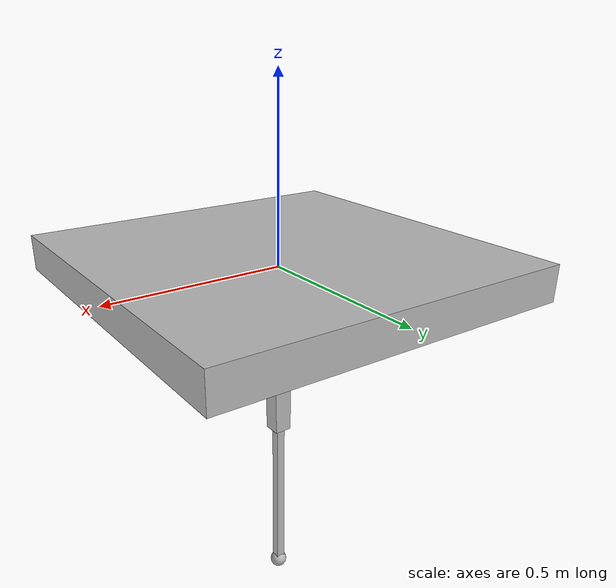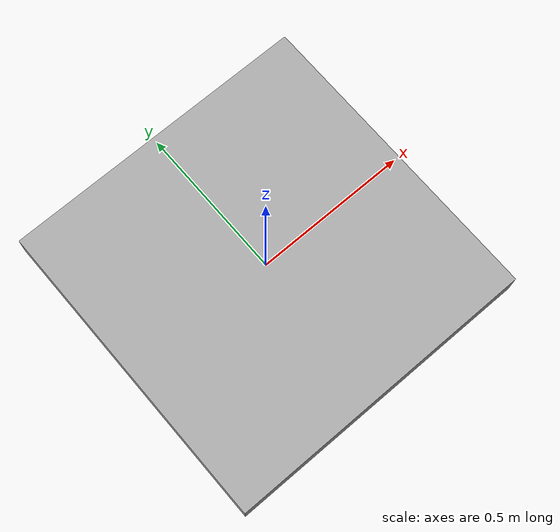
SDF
<?xml version="1.0" ?>
<sdf version='1.5'>
  <model name='ROBOT'>
    <plugin name="HopperPlugin" filename="libPacerGazeboPlugin.so"/>
    <link name='BODY'>
      <pose>0 0 0 0 0 0</pose>
      <inertial>
        <mass>10</mass>
        <inertia>
          <ixx>0.005833</ixx>
          <ixy>0.0</ixy>
          <ixz>-0.0</ixz>
          <iyy>0.003033</iyy>
          <iyz>-0.0</iyz>
          <izz>0.008633</izz>
        </inertia>
      </inertial>

      <visual name='BODY_visual'>
        <geometry>
          <box>
            <size>1 1 0.1</size>
          </box>
        </geometry>
      </visual>

      <collision name='BODY_collision'>
        <geometry>
          <box>
            <size>1 1 0.1</size>
          </box>
        </geometry>
      </collision>

    </link>

<!-- =============================== LF leg =============================== -->
    <joint name='LEG_XY_1' type='universal'>
      <pose>-0.0 0.0 0 0 0 0</pose>
      <parent>BODY0</parent>
      <child>LEG_1</child>
      <axis>
        <xyz>1 0 0</xyz>
        <limit>
          <lower>-1e+16</lower>
          <upper>1e+16</upper>
        </limit>
        <dynamics/>
      </axis>
      <axis2>
        <xyz>0 1 0</xyz>
        <limit>
          <lower>-1e+16</lower>
          <upper>1e+16</upper>
        </limit>
        <dynamics/>
      </axis2>
    </joint>

    <link name='LEG_1'>
      <pose>0 0 -0.25 0 0 0</pose>
      <inertial>
        <mass>1</mass>
        <inertia>
          <ixx>0.1</ixx>
          <ixy>0.0</ixy>
          <ixz>0.0</ixz>
          <iyy>0.1</iyy>
          <iyz>0.0</iyz>
          <izz>0.1</izz>
        </inertia>
      </inertial>

      <visual name='leg1_visual'>
        <geometry>
          <box>
            <size>0.05 0.05 0.5</size>
          </box>
        </geometry>
      </visual>

    </link>

    <joint name='LEG_Z_2' type='prismatic'>
      <pose>0.0 0 0 0 0 0</pose>
      <parent>LEG_1</parent>
      <child>LEG_2</child>
      <axis>
        <xyz>0 0 1</xyz>
        <limit>
          <lower>-1e+16</lower>
          <upper>1e+16</upper>
        </limit>
        <dynamics/>
      </axis>
    </joint>

    <link name='FOOT'>
      <pose>0 0 -1 0 0 0</pose>
      <inertial>
        <pose>0 0 0.25 0 0 0</pose>
        <mass>1</mass>
        <inertia>
          <ixx>0.1</ixx>
          <ixy>0.0</ixy>
          <ixz>0.0</ixz>
          <iyy>0.1</iyy>
          <iyz>0.0</iyz>
          <izz>0.1</izz>
        </inertia>
      </inertial>

      <visual name='leg2_visual'>
        <pose>0 0 0.25 0 0 0</pose>
        <geometry>
          <box>
            <size>0.025 0.025 0.5</size>
          </box>
        </geometry>
      </visual>

      <visual name='FOOT_visual'>
        <pose>0 0 0 0 0 0</pose>
        <geometry>
          <sphere>
            <radius>0.025</radius>
          </sphere>
        </geometry>
      </visual>

      <collision name='FOOT_collision'>
        <pose>0 0 0 0 0 0</pose>
        <geometry>
          <sphere>
            <radius>0.025</radius>
          </sphere>
        </geometry>
      </collision>

      <sensor name='FOOT_contact' type='contact'>
        <contact>
          <collision>FOOT_collision</collision>
        </contact>
        <update_rate>1000</update_rate>
      </sensor>
    </link>
  </model>
</sdf>
